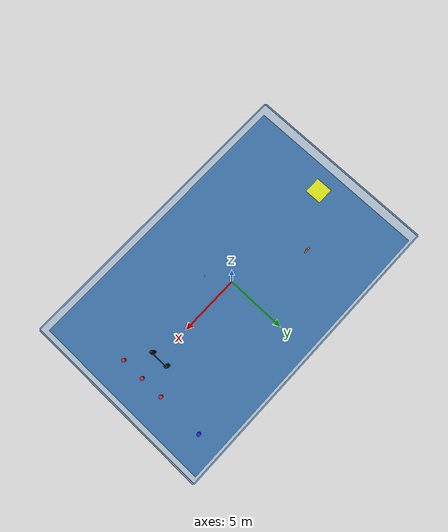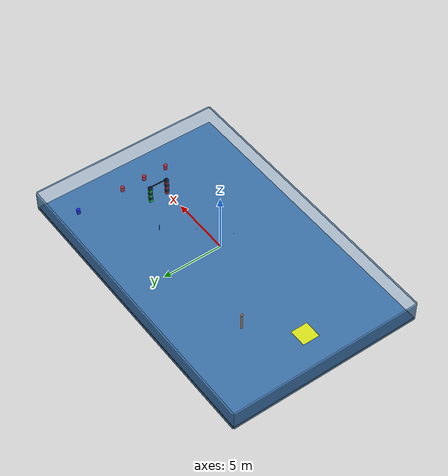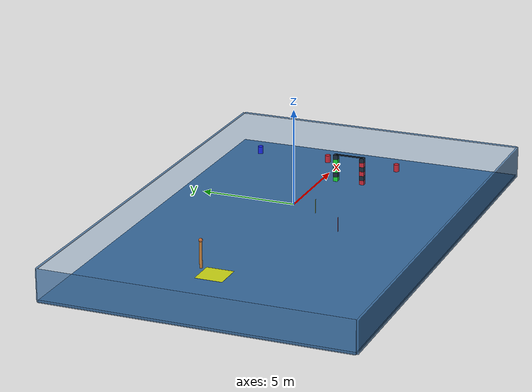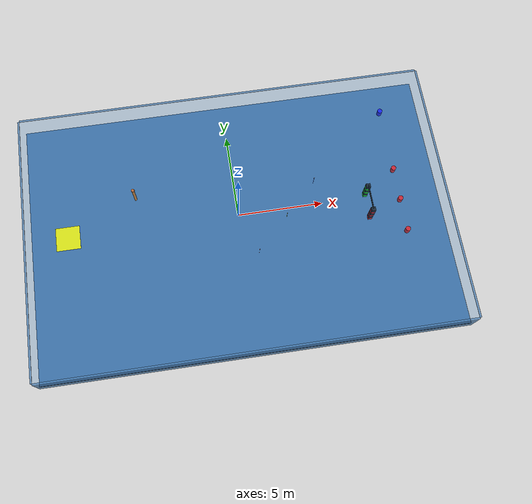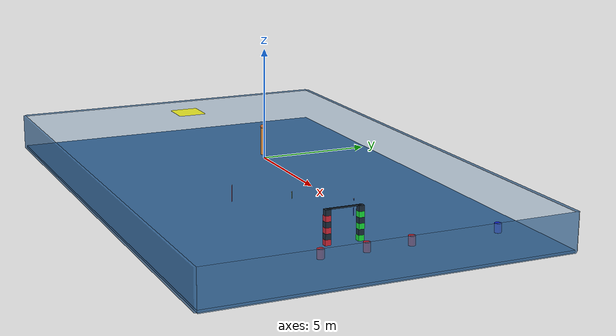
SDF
<sdf version="1.6">
 <world name="sauvc_pool">
  <scene><ambient>0.0 0.4 0.6</ambient><background>0.0 0.3 0.5</background></scene>
  <physics name="default" type="ode">
   <max_step_size>0.001</max_step_size>
   <real_time_factor>1.0</real_time_factor>
   <real_time_update_rate>1000</real_time_update_rate>
   <gravity>0 0 -9.81</gravity>
  </physics>
  <plugin name="ignition::gazebo::systems::Physics" filename="ignition-gazebo-physics-system"/>
  <plugin name="ignition::gazebo::systems::UserCommands" filename="ignition-gazebo-user-commands-system"/>
  <plugin name="ignition::gazebo::systems::SceneBroadcaster" filename="ignition-gazebo-scene-broadcaster-system"/>
  <plugin filename="ignition-gazebo-sensors-system" name="ignition::gazebo::systems::Sensors">
   <render_engine>ogre2</render_engine>
  </plugin>
  <plugin filename="ignition-gazebo-contact-system" name="ignition::gazebo::systems::Contact"/>
  <plugin filename="ignition-gazebo-buoyancy-system" name="ignition::gazebo::systems::Buoyancy">
   <uniform_fluid_density>1000</uniform_fluid_density>
  </plugin>
  <light type="directional" name="sun">
   <pose>0 0 10 0 0 0</pose>
   <diffuse>0.8 0.8 0.8 1</diffuse>
   <specular>0.2 0.2 0.2 1</specular>
   <attenuation>
    <range>1000</range>
    <constant>0.9</constant>
    <linear>0.01</linear>
    <quadratic>0.001</quadratic>
   </attenuation>
   <direction>-0.5 0.1 -0.9</direction>
  </light>
  <light type="point" name="underwater_light_1">
   <pose>0 0 -0.8 0 0 0</pose>
   <diffuse>0.4 0.5 0.6 1</diffuse>
   <specular>0.1 0.1 0.1 1</specular>
   <attenuation>
    <range>20</range>
    <constant>0.5</constant>
    <linear>0.01</linear>
    <quadratic>0.001</quadratic>
   </attenuation>
  </light>
  <model name="sky_cam">
   <static>true</static>
   <link name="camera_link">
    <pose>0 0 10 1.57 1.57 0</pose>
    <sensor name="sky_cam" type="camera">
     <camera>
      <horizontal_fov>1.047</horizontal_fov>
      <image><width>1024</width><height>768</height></image>
      <clip><near>0.1</near><far>100</far></clip>
     </camera>
     <always_on>1</always_on>
     <update_rate>1</update_rate>
     <visualize>true</visualize>
     <topic>sky_cam</topic>
    </sensor>
   </link>
  </model>
  <model name="pool">
   <static>true</static>
   <link name="pool_link">
    <collision name="floor_collision">
     <pose>0 0 -1.6 0 0 0</pose>
     <geometry><box><size>25 16 0.1</size></box></geometry>
    </collision>
    <visual name="floor_visual">
     <pose>0 0 -1.6 0 0 0</pose>
     <geometry><box><size>25 16 0.1</size></box></geometry>
     <material>
      <ambient>0.2 0.4 0.6 1</ambient>
      <diffuse>0.2 0.4 0.6 1</diffuse>
      <specular>0.1 0.1 0.1 1</specular>
     </material>
    </visual>
    <collision name="wall1_collision">
     <pose>0 8.05 -0.8 0 0 0</pose>
     <geometry><box><size>25 0.1 1.7</size></box></geometry>
    </collision>
    <visual name="wall1_visual">
     <pose>0 8.05 -0.8 0 0 0</pose>
     <geometry><box><size>25 0.1 1.7</size></box></geometry>
     <material>
      <ambient>0.3 0.5 0.7 0.8</ambient>
      <diffuse>0.3 0.5 0.7 0.8</diffuse>
      <specular>0.2 0.2 0.2 1</specular>
     </material>
    </visual>
    <collision name="wall2_collision">
     <pose>0 -8.05 -0.8 0 0 0</pose>
     <geometry><box><size>25 0.1 1.7</size></box></geometry>
    </collision>
    <visual name="wall2_visual">
     <pose>0 -8.05 -0.8 0 0 0</pose>
     <geometry><box><size>25 0.1 1.7</size></box></geometry>
     <material>
      <ambient>0.3 0.5 0.7 0.8</ambient>
      <diffuse>0.3 0.5 0.7 0.8</diffuse>
      <specular>0.2 0.2 0.2 1</specular>
     </material>
    </visual>
    <collision name="wall3_collision">
     <pose>12.55 0 -0.8 0 0 0</pose>
     <geometry><box><size>0.1 16 1.7</size></box></geometry>
    </collision>
    <visual name="wall3_visual">
     <pose>12.55 0 -0.8 0 0 0</pose>
     <geometry><box><size>0.1 16 1.7</size></box></geometry>
     <material>
      <ambient>0.3 0.5 0.7 0.8</ambient>
      <diffuse>0.3 0.5 0.7 0.8</diffuse>
      <specular>0.2 0.2 0.2 1</specular>
     </material>
    </visual>
    <collision name="wall4_collision">
     <pose>-12.55 0 -0.8 0 0 0</pose>
     <geometry><box><size>0.1 16 1.7</size></box></geometry>
    </collision>
    <visual name="wall4_visual">
     <pose>-12.55 0 -0.8 0 0 0</pose>
     <geometry><box><size>0.1 16 1.7</size></box></geometry>
     <material>
      <ambient>0.3 0.5 0.7 0.8</ambient>
      <diffuse>0.3 0.5 0.7 0.8</diffuse>
      <specular>0.2 0.2 0.2 1</specular>
     </material>
    </visual>
    <visual name="water_surface">
     <geometry><box><size>25 16 0.01</size></box></geometry>
     <material>
      <ambient>0.3 0.5 0.7 0.3</ambient>
      <diffuse>0.3 0.5 0.7 0.3</diffuse>
      <specular>0.5 0.5 0.5 0.3</specular>
     </material>
    </visual>
   </link>
  </model>
  <model name="starting_zone">
   <static>true</static>
   <pose>-10 0 0.01 0 0 0</pose>
   <link name="starting_zone_link">
    <visual name="starting_zone_visual">
     <geometry><box><size>1.4 1.4 0.02</size></box></geometry>
     <material>
      <ambient>1 1 0 0.8</ambient>
      <diffuse>1 1 0 0.8</diffuse>
      <specular>0.1 0.1 0.1 1</specular>
     </material>
    </visual>
   </link>
  </model>
  <model name="navigation_gate">
   <static>true</static>
   <pose>8 0 -0.8 0 0 0</pose>
   <link name="gate_link">
    <collision name="left_post_collision">
     <pose>0 -0.75 0 0 0 0</pose>
     <geometry><box><size>0.06 0.06 1.5</size></box></geometry>
    </collision>
    <visual name="left_red_1">
     <pose>0 -0.75 -0.625 0 0 0</pose>
     <geometry><box><size>0.25 0.25 0.25</size></box></geometry>
     <material>
      <ambient>1.0 0.0 0.0 1</ambient>
      <diffuse>1.0 0.0 0.0 1</diffuse>
      <specular>1.0 1.0 1.0 1</specular>
      <emissive>0.9 0.0 0.0 1</emissive>
     </material>
    </visual>
    <visual name="left_black_1">
     <pose>0 -0.75 -0.375 0 0 0</pose>
     <geometry><box><size>0.25 0.25 0.25</size></box></geometry>
     <material>
      <ambient>0.02 0.02 0.02 1</ambient>
      <diffuse>0.02 0.02 0.02 1</diffuse>
      <specular>0.1 0.1 0.1 1</specular>
     </material>
    </visual>
    <visual name="left_red_2">
     <pose>0 -0.75 -0.125 0 0 0</pose>
     <geometry><box><size>0.25 0.25 0.25</size></box></geometry>
     <material>
      <ambient>1.0 0.0 0.0 1</ambient>
      <diffuse>1.0 0.0 0.0 1</diffuse>
      <specular>1.0 1.0 1.0 1</specular>
      <emissive>0.9 0.0 0.0 1</emissive>
     </material>
    </visual>
    <visual name="left_black_2">
     <pose>0 -0.75 0.125 0 0 0</pose>
     <geometry><box><size>0.25 0.25 0.25</size></box></geometry>
     <material>
      <ambient>0.02 0.02 0.02 1</ambient>
      <diffuse>0.02 0.02 0.02 1</diffuse>
      <specular>0.1 0.1 0.1 1</specular>
     </material>
    </visual>
    <visual name="left_red_3">
     <pose>0 -0.75 0.375 0 0 0</pose>
     <geometry><box><size>0.25 0.25 0.25</size></box></geometry>
     <material>
      <ambient>1.0 0.0 0.0 1</ambient>
      <diffuse>1.0 0.0 0.0 1</diffuse>
      <specular>1.0 1.0 1.0 1</specular>
      <emissive>0.9 0.0 0.0 1</emissive>
     </material>
    </visual>
    <visual name="left_black_3">
     <pose>0 -0.75 0.625 0 0 0</pose>
     <geometry><box><size>0.25 0.25 0.25</size></box></geometry>
     <material>
      <ambient>0.02 0.02 0.02 1</ambient>
      <diffuse>0.02 0.02 0.02 1</diffuse>
      <specular>0.1 0.1 0.1 1</specular>
     </material>
    </visual>
    <collision name="right_post_collision">
     <pose>0 0.75 0 0 0 0</pose>
     <geometry><box><size>0.06 0.06 1.5</size></box></geometry>
    </collision>
    <visual name="right_green_1">
     <pose>0 0.75 -0.625 0 0 0</pose>
     <geometry><box><size>0.25 0.25 0.25</size></box></geometry>
     <material>
      <ambient>0.0 1.0 0.0 1</ambient>
      <diffuse>0.0 1.0 0.0 1</diffuse>
      <specular>1.0 1.0 1.0 1</specular>
      <emissive>0.0 0.9 0.0 1</emissive>
     </material>
    </visual>
    <visual name="right_black_1">
     <pose>0 0.75 -0.375 0 0 0</pose>
     <geometry><box><size>0.25 0.25 0.25</size></box></geometry>
     <material>
      <ambient>0.02 0.02 0.02 1</ambient>
      <diffuse>0.02 0.02 0.02 1</diffuse>
      <specular>0.1 0.1 0.1 1</specular>
     </material>
    </visual>
    <visual name="right_green_2">
     <pose>0 0.75 -0.125 0 0 0</pose>
     <geometry><box><size>0.25 0.25 0.25</size></box></geometry>
     <material>
      <ambient>0.0 1.0 0.0 1</ambient>
      <diffuse>0.0 1.0 0.0 1</diffuse>
      <specular>1.0 1.0 1.0 1</specular>
      <emissive>0.0 0.9 0.0 1</emissive>
     </material>
    </visual>
    <visual name="right_black_2">
     <pose>0 0.75 0.125 0 0 0</pose>
     <geometry><box><size>0.25 0.25 0.25</size></box></geometry>
     <material>
      <ambient>0.02 0.02 0.02 1</ambient>
      <diffuse>0.02 0.02 0.02 1</diffuse>
      <specular>0.1 0.1 0.1 1</specular>
     </material>
    </visual>
    <visual name="right_green_3">
     <pose>0 0.75 0.375 0 0 0</pose>
     <geometry><box><size>0.25 0.25 0.25</size></box></geometry>
     <material>
      <ambient>0.0 1.0 0.0 1</ambient>
      <diffuse>0.0 1.0 0.0 1</diffuse>
      <specular>1.0 1.0 1.0 1</specular>
      <emissive>0.0 0.9 0.0 1</emissive>
     </material>
    </visual>
    <visual name="right_black_3">
     <pose>0 0.75 0.625 0 0 0</pose>
     <geometry><box><size>0.25 0.25 0.25</size></box></geometry>
     <material>
      <ambient>0.02 0.02 0.02 1</ambient>
      <diffuse>0.02 0.02 0.02 1</diffuse>
      <specular>0.1 0.1 0.1 1</specular>
     </material>
    </visual>
    <collision name="top_bar_collision">
     <pose>0 0 0.75 0 0 0</pose>
     <geometry><box><size>0.06 1.5 0.06</size></box></geometry>
    </collision>
    <visual name="top_bar_visual">
     <pose>0 0 0.75 0 0 0</pose>
     <geometry><box><size>0.06 1.5 0.06</size></box></geometry>
     <material>
      <ambient>0.02 0.02 0.02 1</ambient>
      <diffuse>0.02 0.02 0.02 1</diffuse>
      <specular>0.1 0.1 0.1 1</specular>
     </material>
    </visual>
   </link>
  </model>
  <model name="orange_flare">
   <static>true</static>
   <pose>-6 2.5 -0.85 0 0 0</pose>
   <link name="flare_link">
    <collision name="flare_collision">
     <geometry><cylinder><radius>0.075</radius><length>1.5</length></cylinder></geometry>
    </collision>
    <visual name="flare_visual">
     <geometry><cylinder><radius>0.075</radius><length>1.5</length></cylinder></geometry>
     <material>
      <ambient>1.0 0.5 0.0 1</ambient>
      <diffuse>1.0 0.5 0.0 1</diffuse>
      <specular>1.0 0.8 0.4 1</specular>
      <emissive>1.0 0.5 0.0 1</emissive>
     </material>
    </visual>
    <visual name="flare_cap">
     <pose>0 0 0.75 0 0 0</pose>
     <geometry><sphere><radius>0.10</radius></sphere></geometry>
     <material>
      <ambient>1.0 0.4 0.0 1</ambient>
      <diffuse>1.0 0.4 0.0 1</diffuse>
      <specular>1.0 0.7 0.3 1</specular>
      <emissive>1.0 0.5 0.0 1</emissive>
     </material>
    </visual>
   </link>
  </model>
  <model name="red_flare">
   <static>true</static>
   <pose>1 -2 -1.2 0 0 0</pose>
   <link name="flare_link">
    <collision name="flare_collision">
     <geometry><cylinder><radius>0.008</radius><length>0.8</length></cylinder></geometry>
    </collision>
    <visual name="flare_visual">
     <geometry><cylinder><radius>0.008</radius><length>0.8</length></cylinder></geometry>
     <material>
      <ambient>1 0 0 1</ambient>
      <diffuse>1 0 0 1</diffuse>
      <specular>0.5 0.5 0.5 1</specular>
      <emissive>0.8 0 0 1</emissive>
     </material>
    </visual>
   </link>
  </model>
  <model name="yellow_flare">
   <static>true</static>
   <pose>3 0 -1.2 0 0 0</pose>
   <link name="flare_link">
    <collision name="flare_collision">
     <geometry><cylinder><radius>0.008</radius><length>0.8</length></cylinder></geometry>
    </collision>
    <visual name="flare_visual">
     <geometry><cylinder><radius>0.008</radius><length>0.8</length></cylinder></geometry>
     <material>
      <ambient>1 1 0 1</ambient>
      <diffuse>1 1 0 1</diffuse>
      <specular>0.5 0.5 0.5 1</specular>
      <emissive>0.8 0.8 0 1</emissive>
     </material>
    </visual>
   </link>
  </model>
  <model name="blue_flare">
   <static>true</static>
   <pose>5 2 -1.2 0 0 0</pose>
   <link name="flare_link">
    <collision name="flare_collision">
     <geometry><cylinder><radius>0.008</radius><length>0.8</length></cylinder></geometry>
    </collision>
    <visual name="flare_visual">
     <geometry><cylinder><radius>0.008</radius><length>0.8</length></cylinder></geometry>
     <material>
      <ambient>0 0 1 1</ambient>
      <diffuse>0 0 1 1</diffuse>
      <specular>0.5 0.5 0.5 1</specular>
      <emissive>0 0 0.8 1</emissive>
     </material>
    </visual>
   </link>
  </model>
  <model name="golf_ball_red">
   <static>true</static>
   <pose>1 -2 -0.779 0 0 0</pose>
   <link name="ball_link">
    <collision name="ball_collision"><geometry><sphere><radius>0.021</radius></sphere></geometry></collision>
    <visual name="ball_visual">
     <geometry><sphere><radius>0.021</radius></sphere></geometry>
     <material><ambient>1 1 1 1</ambient><diffuse>1 1 1 1</diffuse><specular>0.8 0.8 0.8 1</specular></material>
    </visual>
   </link>
  </model>
  <model name="golf_ball_yellow">
   <static>true</static>
   <pose>3 0 -0.779 0 0 0</pose>
   <link name="ball_link">
    <collision name="ball_collision"><geometry><sphere><radius>0.021</radius></sphere></geometry></collision>
    <visual name="ball_visual">
     <geometry><sphere><radius>0.021</radius></sphere></geometry>
     <material><ambient>1 1 1 1</ambient><diffuse>1 1 1 1</diffuse><specular>0.8 0.8 0.8 1</specular></material>
    </visual>
   </link>
  </model>
  <model name="golf_ball_blue">
   <static>true</static>
   <pose>5 2 -0.779 0 0 0</pose>
   <link name="ball_link">
    <collision name="ball_collision"><geometry><sphere><radius>0.021</radius></sphere></geometry></collision>
    <visual name="ball_visual">
     <geometry><sphere><radius>0.021</radius></sphere></geometry>
     <material><ambient>1 1 1 1</ambient><diffuse>1 1 1 1</diffuse><specular>0.8 0.8 0.8 1</specular></material>
    </visual>
   </link>
  </model>
  <model name="blue_drum">
   <static>true</static>
   <pose>10 6 -1.1 0 0 0</pose>
   <link name="drum_link">
    <collision name="drum_collision">
     <geometry><cylinder><radius>0.15</radius><length>0.4</length></cylinder></geometry>
    </collision>
    <visual name="drum_visual">
     <geometry><cylinder><radius>0.15</radius><length>0.4</length></cylinder></geometry>
     <material><ambient>0 0 1 1</ambient><diffuse>0 0 1 1</diffuse><specular>0.3 0.3 0.3 1</specular></material>
    </visual>
   </link>
  </model>
  <model name="red_drum_1">
   <static>true</static>
   <pose>10 2 -1.1 0 0 0</pose>
   <link name="drum_link">
    <collision name="drum_collision">
     <geometry><cylinder><radius>0.15</radius><length>0.4</length></cylinder></geometry>
    </collision>
    <visual name="drum_visual">
     <geometry><cylinder><radius>0.15</radius><length>0.4</length></cylinder></geometry>
     <material><ambient>1 0 0 1</ambient><diffuse>1 0 0 1</diffuse><specular>0.3 0.3 0.3 1</specular></material>
    </visual>
   </link>
  </model>
  <model name="red_drum_2">
   <static>true</static>
   <pose>10 0 -1.1 0 0 0</pose>
   <link name="drum_link">
    <collision name="drum_collision">
     <geometry><cylinder><radius>0.15</radius><length>0.4</length></cylinder></geometry>
    </collision>
    <visual name="drum_visual">
     <geometry><cylinder><radius>0.15</radius><length>0.4</length></cylinder></geometry>
     <material><ambient>1 0 0 1</ambient><diffuse>1 0 0 1</diffuse><specular>0.3 0.3 0.3 1</specular></material>
    </visual>
   </link>
  </model>
  <model name="red_drum_3">
   <static>true</static>
   <pose>10 -2 -1.1 0 0 0</pose>
   <link name="drum_link">
    <collision name="drum_collision">
     <geometry><cylinder><radius>0.15</radius><length>0.4</length></cylinder></geometry>
    </collision>
    <visual name="drum_visual">
     <geometry><cylinder><radius>0.15</radius><length>0.4</length></cylinder></geometry>
     <material><ambient>1 0 0 1</ambient><diffuse>1 0 0 1</diffuse><specular>0.3 0.3 0.3 1</specular></material>
    </visual>
   </link>
  </model>
 </world>
</sdf>
